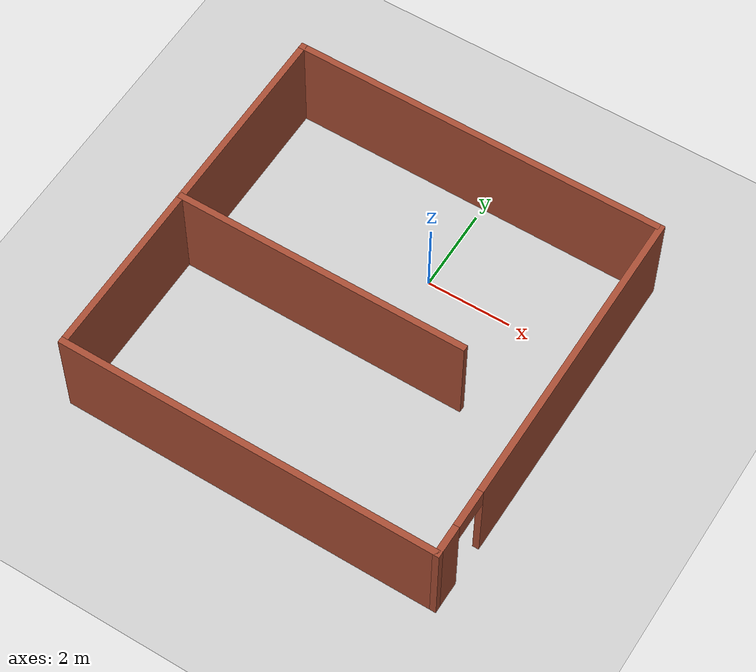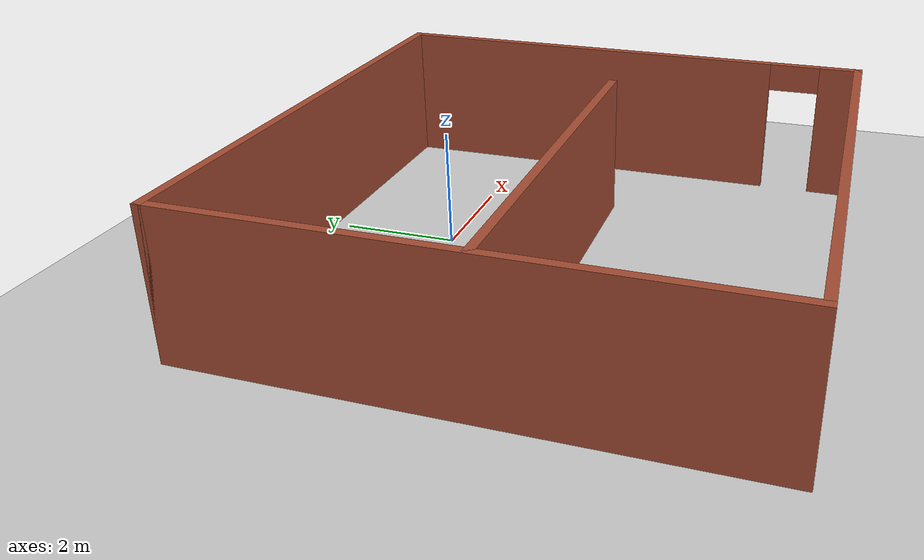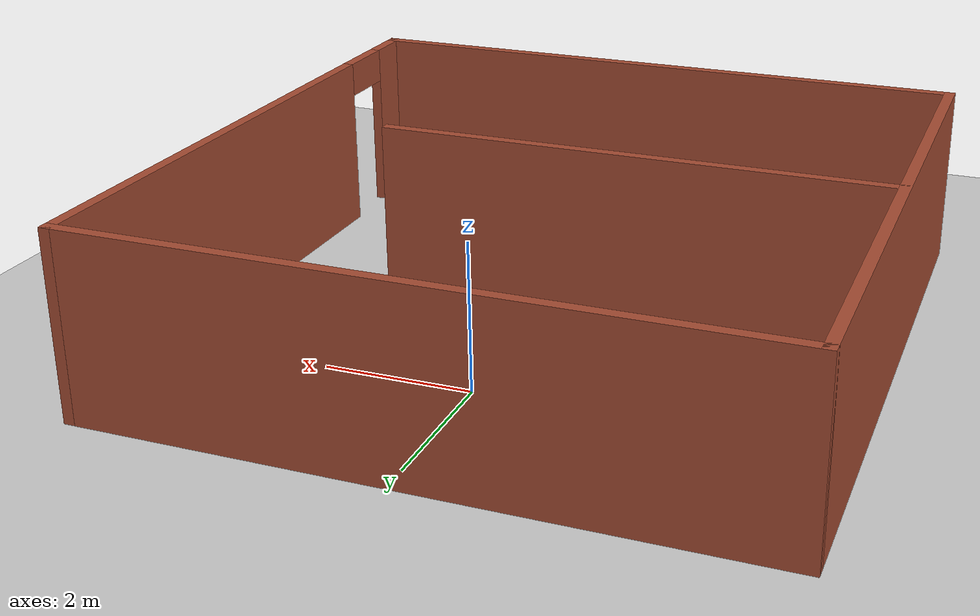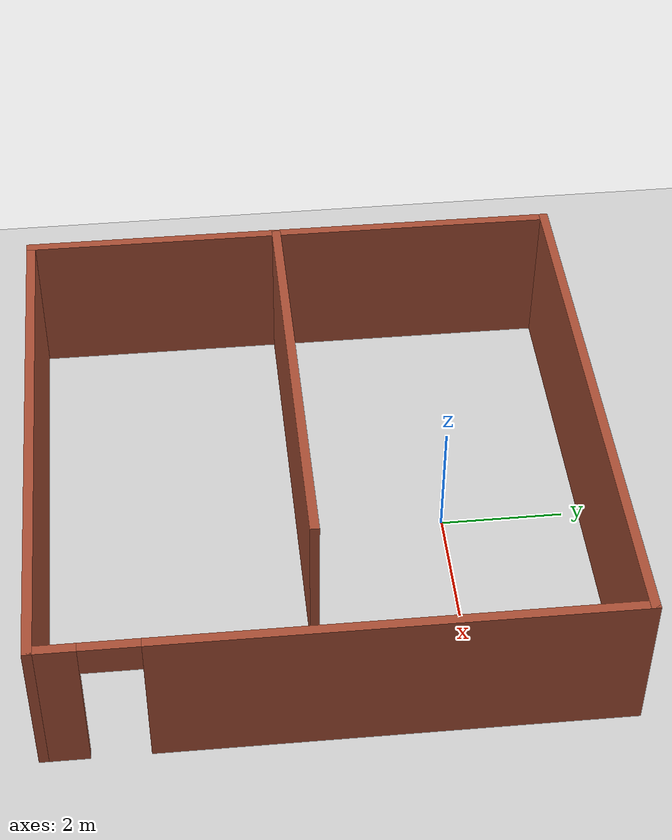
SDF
<sdf version="1.7">
 <world name="default">
  <light name="sun" type="directional">
   <pose>0 0 10 0 -0 0</pose>
   <diffuse>0.8 0.8 0.8 1</diffuse>
   <specular>0.2 0.2 0.2 1</specular>
   <attenuation>
    <range>1000</range>
    <constant>0.9</constant>
    <linear>0.01</linear>
    <quadratic>0.001</quadratic>
   </attenuation>
   <direction>-0.5 0.1 -0.9</direction>
   <spot><inner_angle>0</inner_angle><outer_angle>0</outer_angle><falloff>0</falloff></spot>
  </light>
  <model name="ground_plane">
   <static>1</static>
   <link name="link">
    <collision name="collision">
     <geometry><plane><normal>0 0 1</normal><size>100 100</size></plane></geometry>
     <surface><friction><ode><mu>100</mu><mu2>50</mu2></ode></friction></surface>
    </collision>
    <visual name="visual">
     <cast_shadows>0</cast_shadows>
     <geometry><plane><normal>0 0 1</normal><size>100 100</size></plane></geometry>
     <material>
      <script><uri>file://media/materials/scripts/gazebo.material</uri><name>Gazebo/Grey</name></script>
     </material>
    </visual>
   </link>
  </model>
  <gravity>0 0 -9.8</gravity>
  <magnetic_field>6e-06 2.3e-05 -4.2e-05</magnetic_field>
  <atmosphere type="adiabatic"/>
  <physics type="ode">
   <max_step_size>0.001</max_step_size>
   <real_time_factor>1</real_time_factor>
   <real_time_update_rate>1000</real_time_update_rate>
  </physics>
  <scene><ambient>0.4 0.4 0.4 1</ambient><background>0.7 0.7 0.7 1</background><shadows>1</shadows></scene>
  <audio><device>default</device></audio>
  <spherical_coordinates>
   <surface_model>EARTH_WGS84</surface_model>
   <latitude_deg>0</latitude_deg>
   <longitude_deg>0</longitude_deg>
   <elevation>0</elevation>
   <heading_deg>0</heading_deg>
  </spherical_coordinates>
  <model name="sim_room1">
   <pose>-0.307921 -2.07496 0 0 0 -1.57459</pose>
   <link name="Wall_0">
    <collision name="Wall_0_Collision">
     <geometry><box><size>9 0.15 2.5</size></box></geometry>
     <pose>0 0 1.25 0 -0 0</pose>
    </collision>
    <visual name="Wall_0_Visual">
     <pose>0 0 1.25 0 -0 0</pose>
     <geometry><box><size>9 0.15 2.5</size></box></geometry>
     <material>
      <script><uri>file://media/materials/scripts/gazebo.material</uri><name>Gazebo/Bricks</name></script>
      <ambient>1 1 1 1</ambient>
     </material>
     <meta><layer>0</layer></meta>
    </visual>
    <pose>-0 -4.425 0 0 -0 0</pose>
   </link>
   <link name="Wall_1">
    <collision name="Wall_1_Collision">
     <geometry><box><size>9 0.15 2.5</size></box></geometry>
     <pose>0 0 1.25 0 -0 0</pose>
    </collision>
    <visual name="Wall_1_Visual">
     <pose>0 0 1.25 0 -0 0</pose>
     <geometry><box><size>9 0.15 2.5</size></box></geometry>
     <material>
      <script><uri>file://media/materials/scripts/gazebo.material</uri><name>Gazebo/Bricks</name></script>
      <ambient>1 1 1 1</ambient>
     </material>
     <meta><layer>0</layer></meta>
    </visual>
    <pose>4.425 -0 0 0 -0 1.5708</pose>
   </link>
   <link name="Wall_2">
    <pose>-0 4.425 0 0 -0 3.14159</pose>
    <visual name="Wall_2_Visual_0">
     <pose>-4.11802 0 1.25 0 -0 0</pose>
     <geometry><box><size>0.763953 0.15 2.5</size></box></geometry>
     <material>
      <script><uri>file://media/materials/scripts/gazebo.material</uri><name>Gazebo/Bricks</name></script>
      <ambient>1 1 1 1</ambient>
     </material>
     <meta><layer>0</layer></meta>
    </visual>
    <collision name="Wall_2_Collision_0">
     <geometry><box><size>0.763953 0.15 2.5</size></box></geometry>
     <pose>-4.11802 0 1.25 0 -0 0</pose>
    </collision>
    <visual name="Wall_2_Visual_1">
     <pose>0.831976 0 1.25 0 -0 0</pose>
     <geometry><box><size>7.33605 0.15 2.5</size></box></geometry>
     <material>
      <script><uri>file://media/materials/scripts/gazebo.material</uri><name>Gazebo/Bricks</name></script>
      <ambient>1 1 1 1</ambient>
     </material>
     <meta><layer>0</layer></meta>
    </visual>
    <collision name="Wall_2_Collision_1">
     <geometry><box><size>7.33605 0.15 2.5</size></box></geometry>
     <pose>0.831976 0 1.25 0 -0 0</pose>
    </collision>
    <visual name="Wall_2_Visual_2">
     <pose>-3.28605 0 2.25 0 -0 0</pose>
     <geometry><box><size>0.9 0.15 0.5</size></box></geometry>
     <material>
      <script><uri>file://media/materials/scripts/gazebo.material</uri><name>Gazebo/Bricks</name></script>
      <ambient>1 1 1 1</ambient>
     </material>
     <meta><layer>0</layer></meta>
    </visual>
    <collision name="Wall_2_Collision_2">
     <geometry><box><size>0.9 0.15 0.5</size></box></geometry>
     <pose>-3.28605 0 2.25 0 -0 0</pose>
    </collision>
   </link>
   <link name="Wall_3">
    <collision name="Wall_3_Collision">
     <geometry><box><size>9 0.15 2.5</size></box></geometry>
     <pose>0 0 1.25 0 -0 0</pose>
    </collision>
    <visual name="Wall_3_Visual">
     <pose>0 0 1.25 0 -0 0</pose>
     <geometry><box><size>9 0.15 2.5</size></box></geometry>
     <material>
      <script><uri>file://media/materials/scripts/gazebo.material</uri><name>Gazebo/Bricks</name></script>
      <ambient>1 1 1 1</ambient>
     </material>
     <meta><layer>0</layer></meta>
    </visual>
    <pose>-4.425 -0 0 0 -0 -1.5708</pose>
   </link>
   <link name="Wall_5">
    <collision name="Wall_5_Collision">
     <geometry><box><size>7 0.15 2.5</size></box></geometry>
     <pose>0 0 1.25 0 -0 0</pose>
    </collision>
    <visual name="Wall_5_Visual">
     <pose>0 0 1.25 0 -0 0</pose>
     <geometry><box><size>7 0.15 2.5</size></box></geometry>
     <material>
      <script><uri>file://media/materials/scripts/gazebo.material</uri><name>Gazebo/Bricks</name></script>
      <ambient>1 1 1 1</ambient>
     </material>
     <meta><layer>0</layer></meta>
    </visual>
    <pose>0.232807 -0.973674 0 0 -0 1.5708</pose>
   </link>
   <static>1</static>
  </model>
 </world>
</sdf>
